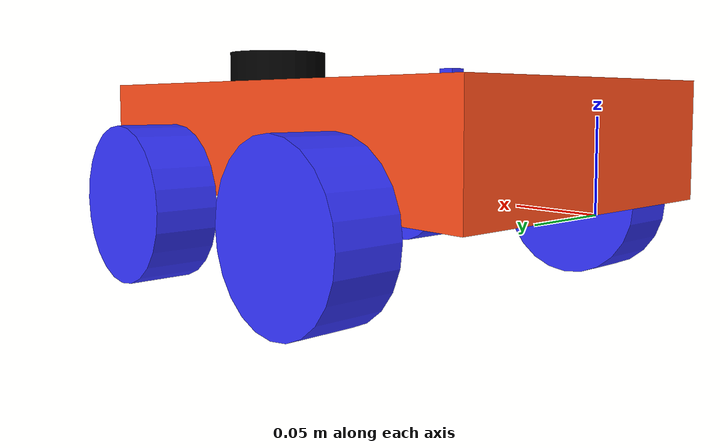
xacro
<?xml version="1.0"?>
<robot xmlns:xacro="http://www.ros.org/wiki/xacro"  name="robot">

    <xacro:arg name="use_ros2_control" default="true"/>
    <xacro:arg name="sim_mode" default="false"/>

    <xacro:include filename="robot_main.xacro" />

    <xacro:if value="$(arg use_ros2_control)">
        <xacro:include filename="ros2_control_4WD.xacro" />
    </xacro:if>
    <xacro:unless value="$(arg use_ros2_control)">
        <xacro:include filename="gazebo_control.xacro" />
    </xacro:unless>
    <xacro:include filename="lidar.xacro" />
    <xacro:include filename="depth_camera.xacro" />

    <xacro:include filename="imu.xacro" />
</robot>

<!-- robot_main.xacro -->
<robot xmlns:xacro="http://www.ros.org/wiki/xacro" >

    <xacro:include filename="inertial_macros.xacro"/>

    <!-- Properties -->
    <xacro:property name="chassis_length" value="0.34"/>
    <xacro:property name="chassis_width" value="0.2"/>
    <xacro:property name="chassis_height" value="0.07"/>
    <xacro:property name="chassis_mass" value="1.0"/>
    <xacro:property name="wheel_radius" value="0.05"/>
    <xacro:property name="wheel_thickness" value="0.04"/>
    <xacro:property name="wheel_mass" value="0.7"/>
    <xacro:property name="wheel_offset_x" value="0.087"/>
    <xacro:property name="wheel_offset_y" value="0.12"/>
    <xacro:property name="wheel_offset_z" value="-0.007"/>

    <!-- Materials -->
    <material name="white">
        <color rgba="1 1 1 1" />
    </material>

    <material name="orange">
        <color rgba="1 0.3 0.1 1"/>
    </material>

    <material name="blue">
        <color rgba="0.2 0.2 1 1"/>
    </material>

    <material name="black">
        <color rgba="0 0 0 1"/>
    </material>

    <material name="red">
        <color rgba="1 0 0 1"/>
    </material>

    <!-- BASE LINK -->
    <link name="base_link">
    </link>

    <!-- BASE_FOOTPRINT LINK -->
    <joint name="base_footprint_joint" type="fixed">
        <parent link="base_link"/>
        <child link="base_footprint"/>
        <origin xyz="0 0 0" rpy="0 0 0"/>
    </joint>

    <link name="base_footprint">
    </link>

    <!-- CHASSIS LINK -->
    <joint name="chassis_joint" type="fixed">
        <parent link="base_link"/>
        <child link="chassis"/>
        <origin xyz="0 0 0"/>
    </joint>

    <link name="chassis">
        <visual>
            <origin xyz="${chassis_length/2} 0 ${chassis_height/2}"/>
            <geometry>
                <box size="${chassis_length} ${chassis_width} ${chassis_height}"/>
            </geometry>
            <material name="orange"/>
        </visual>
        <collision>
            <origin xyz="${chassis_length/2} 0 ${chassis_height/2}"/>
            <geometry>
                <box size="${chassis_length} ${chassis_width} ${chassis_height}"/>
            </geometry>
        </collision>
        <xacro:inertial_box mass="0.5" x="${chassis_length}" y="${chassis_width}" z="${chassis_height}">
            <origin xyz="${chassis_length/2} 0 ${chassis_height/2}" rpy="0 0 0"/>
        </xacro:inertial_box>
    </link>

    <gazebo reference="chassis">
        <material>Gazebo/Orange</material>
    </gazebo>

    <!-- FRONT LEFT WHEEL -->
    <joint name="left_wheel_joint_front" type="continuous">
        <parent link="chassis"/>
        <child link="left_wheel_front"/>
        <origin xyz="0.253 ${wheel_offset_y} ${wheel_offset_z}" rpy="-${pi/2} 0 0"/>
        <axis xyz="0 0 1"/>
    </joint>

    <link name="left_wheel_front">
        <visual>
            <geometry>
                <cylinder radius="${wheel_radius}" length="${wheel_thickness}"/>
            </geometry>
            <material name="blue"/>
        </visual>
        <collision>
            <geometry>
                <sphere radius="${wheel_radius}"/>
            </geometry>
        </collision>
        <xacro:inertial_cylinder mass="${wheel_mass}" length="${wheel_thickness}" radius="${wheel_radius}">
            <origin xyz="0 0 0" rpy="0 0 0"/>
        </xacro:inertial_cylinder>
    </link>

    <gazebo reference="left_wheel_front">
        <material>Gazebo/Blue</material>
    </gazebo>

    <!-- FRONT RIGHT WHEEL -->
    <joint name="right_wheel_joint_front" type="continuous">
        <parent link="chassis"/>
        <child link="right_wheel_front"/>
        <origin xyz="0.253 ${-wheel_offset_y} ${wheel_offset_z}" rpy="${pi/2} 0 0"/>
        <axis xyz="0 0 -1"/>
    </joint>

    <link name="right_wheel_front">
        <visual>
            <geometry>
                <cylinder radius="${wheel_radius}" length="${wheel_thickness}"/>
            </geometry>
            <material name="blue"/>
        </visual>
        <collision>
            <geometry>
                <sphere radius="${wheel_radius}"/>
            </geometry>
        </collision>
        <xacro:inertial_cylinder mass="${wheel_mass}" length="${wheel_thickness}" radius="${wheel_radius}">
            <origin xyz="0 0 0" rpy="0 0 0"/>
        </xacro:inertial_cylinder>
    </link>

    <gazebo reference="right_wheel_front">
        <material>Gazebo/Blue</material>
    </gazebo>

    <!-- REAR LEFT WHEEL -->
    <joint name="left_wheel_joint_rear" type="continuous">
        <parent link="chassis"/>
        <child link="left_wheel_rear"/>
        <origin xyz="${wheel_offset_x} ${wheel_offset_y} ${wheel_offset_z}" rpy="-${pi/2} 0 0"/>
        <axis xyz="0 0 1"/>
    </joint>

    <link name="left_wheel_rear">
        <visual>
            <geometry>
                <cylinder radius="${wheel_radius}" length="${wheel_thickness}"/>
            </geometry>
            <material name="blue"/>
        </visual>
        <collision>
            <geometry>
                <sphere radius="${wheel_radius}"/>
            </geometry>
        </collision>
        <xacro:inertial_cylinder mass="${wheel_mass}" length="${wheel_thickness}" radius="${wheel_radius}">
            <origin xyz="0 0 0" rpy="0 0 0"/>
        </xacro:inertial_cylinder>
    </link>

    <gazebo reference="left_wheel_rear">
        <material>Gazebo/Blue</material>
    </gazebo>

    <!-- REAR RIGHT WHEEL -->
    <joint name="right_wheel_joint_rear" type="continuous">
        <parent link="chassis"/>
        <child link="right_wheel_rear"/>
        <origin xyz="${wheel_offset_x} ${-wheel_offset_y} ${wheel_offset_z}" rpy="${pi/2} 0 0"/>
        <axis xyz="0 0 -1"/>
    </joint>

    <link name="right_wheel_rear">
        <visual>
            <geometry>
                <cylinder radius="${wheel_radius}" length="${wheel_thickness}"/>
            </geometry>
            <material name="blue"/>
        </visual>
        <collision>
            <geometry>
                <sphere radius="${wheel_radius}"/>
            </geometry>
        </collision>
        <xacro:inertial_cylinder mass="${wheel_mass}" length="${wheel_thickness}" radius="${wheel_radius}">
            <origin xyz="0 0 0" rpy="0 0 0"/>
        </xacro:inertial_cylinder>
    </link>

    <gazebo reference="right_wheel_rear">
        <material>Gazebo/Blue</material>
    </gazebo>

</robot>

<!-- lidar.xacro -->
<robot xmlns:xacro="http://www.ros.org/wiki/xacro" >

    <joint name="laser_joint" type="fixed">
        <parent link="chassis"/>
        <child link="laser_frame"/>
        <origin xyz="0.28 0 0.075" rpy="0 0 0"/>
    </joint>

    <link name="laser_frame">
        <visual>
            <geometry>
                <cylinder radius="0.036" length="0.04"/>
            </geometry>
            <material name="black"/>
        </visual>
        <collision>
            <geometry>
                <cylinder radius="0.036" length="0.04"/>
            </geometry>
        </collision>
        <xacro:inertial_cylinder mass="0.1" length="0.04" radius="0.036">
            <origin xyz="0 0 0" rpy="0 0 0"/>
        </xacro:inertial_cylinder>
    </link>

    <gazebo reference="laser_frame">
        <material>Gazebo/Red</material>

        <sensor name="laser" type="ray">
            <pose> 0 0 0 0 0 0 </pose>
            <visualize>true</visualize>
            <update_rate>10</update_rate>
            <ray>
                <scan>
                    <horizontal>
                        <samples>360</samples>
                        <min_angle>-3.14</min_angle>
                        <max_angle>3.14</max_angle>
                    </horizontal>
                </scan>
                <range>
                    <min>0.2</min>
                    <max>12</max>
                </range>
            </ray>
            <plugin name="laser_controller" filename="libgazebo_ros_ray_sensor.so">
                <ros>
                    <argument>~/out:=scan</argument>
                </ros>
                <output_type>sensor_msgs/LaserScan</output_type>
                <frame_name>laser_frame</frame_name>
            </plugin>
        </sensor>
    </gazebo>

</robot>

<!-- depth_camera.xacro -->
<robot xmlns:xacro="http://www.ros.org/wiki/xacro" >

    <joint name="camera_joint" type="fixed">
        <parent link="chassis"/>
        <child link="camera_link"/>
        <origin xyz="0.348 0 0.05" rpy="0 0 0"/>
    </joint>

    <link name="camera_link">
        <visual>
            <geometry>
                <box size="0.015 0.165 0.04"/>
            </geometry>
            <material name="red"/>
        </visual>
    </link>

    <joint name="camera_optical_joint" type="fixed">
        <parent link="camera_link"/>
        <child link="camera_link_optical"/>
        <origin xyz="0 0 0" rpy="${-pi/2} 0 ${-pi/2}"/>
    </joint>

    <link name="camera_link_optical"></link>

    <gazebo reference="camera_link">
        <material>Gazebo/Red</material>

        <sensor name="camera" type="depth">
            <pose> 0 0 0 0 0 0 </pose>
            <visualize>true</visualize>
            <update_rate>10</update_rate>
            <camera>
                <horizontal_fov>1.154</horizontal_fov>
                <image>
                    <format>B8G8R8</format>
                    <width>640</width>
                    <height>480</height>
                </image>
                <clip>
                    <near>0.05</near>
                    <far>8.0</far>
                </clip>
            </camera>
            <plugin name="camera_controller" filename="libgazebo_ros_camera.so">
                <frame_name>camera_link_optical</frame_name>
                <min_depth>0.6</min_depth>
                <max_depth>8.0</max_depth>
            </plugin>
        </sensor>
    </gazebo>

</robot>

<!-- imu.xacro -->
<robot xmlns:xacro="http://www.ros.org/wiki/xacro">

    <!-- Link IMU -->
    <link name="imu_link">
        <visual>
            <geometry>
                <box size="0.01 0.01 0.005"/>  <!-- Kích thước mô hình IMU -->
            </geometry>
            <material name="blue"/>
        </visual>
        <collision>
            <geometry>
                <box size="0.01 0.01 0.005"/>
            </geometry>
        </collision>
        <inertial>
            <mass value="0.01"/>
            <origin xyz="0 0 0"/>
            <inertia ixx="1e-6" ixy="0" ixz="0" iyy="1e-6" iyz="0" izz="1e-6"/>
        </inertial>
    </link>

    <!-- Joint cố định IMU vào robot -->
    <joint name="imu_joint" type="fixed">
        <parent link="chassis"/>
        <child link="imu_link"/>
        <origin xyz="0.1 0 0.075" rpy="0 0 0"/>  <!-- Vị trí IMU trên robot -->
    </joint>

    <!-- Plugin IMU cho Gazebo -->
    <gazebo reference="imu_link">
        <material>Gazebo/Blue</material>

        <sensor name="imu_sensor" type="imu">
            <pose>0 0 0 0 0 0</pose>
            <always_on>true</always_on>
            <update_rate>10</update_rate>  <!-- Cập nhật dữ liệu IMU 50Hz -->
            <imu>
                <topic>imu/data</topic>
                <orientation>true</orientation>
                <angular_velocity>true</angular_velocity>
                <linear_acceleration>true</linear_acceleration>
            </imu>
        </sensor>
    </gazebo>

</robot>
